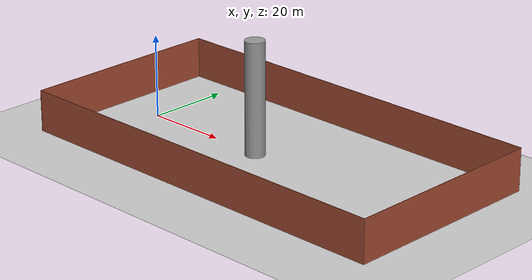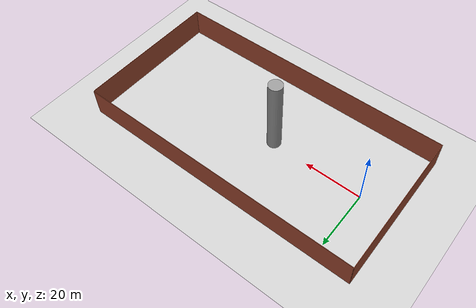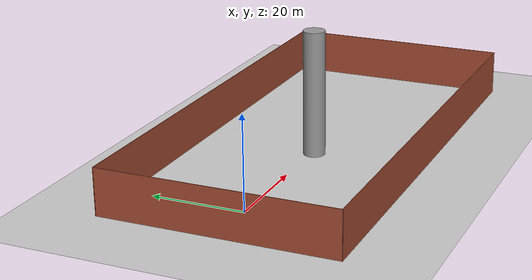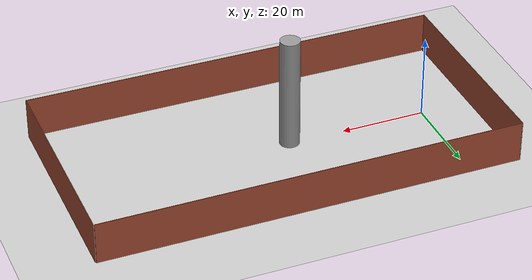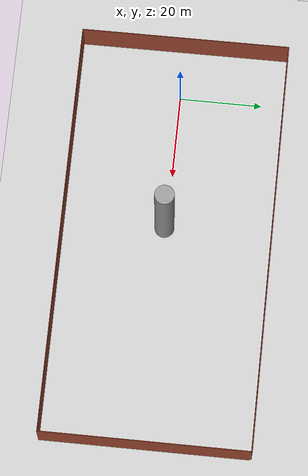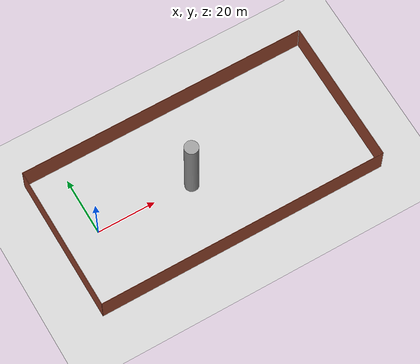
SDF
<sdf version="1.7">
 <world name="default">
  <light name="sun" type="directional">
   <pose>0 0 10 0 -0 0</pose>
   <diffuse>0.8 0.8 0.8 1</diffuse>
   <specular>0.2 0.2 0.2 1</specular>
   <attenuation>
    <range>1000</range>
    <constant>0.9</constant>
    <linear>0.01</linear>
    <quadratic>0.001</quadratic>
   </attenuation>
   <direction>-0.5 0.1 -0.9</direction>
   <spot><inner_angle>0</inner_angle><outer_angle>0</outer_angle><falloff>0</falloff></spot>
  </light>
  <model name="ground_plane">
   <static>1</static>
   <link name="link">
    <collision name="collision">
     <geometry><plane><normal>0 0 1</normal><size>100 100</size></plane></geometry>
     <surface>
      <contact><collide_bitmask>65535</collide_bitmask></contact>
      <friction><ode><mu>100</mu><mu2>50</mu2></ode></friction>
     </surface>
    </collision>
    <visual name="visual">
     <cast_shadows>0</cast_shadows>
     <geometry><plane><normal>0 0 1</normal><size>100 100</size></plane></geometry>
     <material>
      <script><uri>file://media/materials/scripts/gazebo.material</uri><name>Gazebo/Grey</name></script>
     </material>
    </visual>
   </link>
  </model>
  <gravity>0 0 -9.8</gravity>
  <magnetic_field>6e-06 2.3e-05 -4.2e-05</magnetic_field>
  <atmosphere type="adiabatic"/>
  <physics type="ode">
   <max_step_size>0.001</max_step_size>
   <real_time_factor>1</real_time_factor>
   <real_time_update_rate>1000</real_time_update_rate>
  </physics>
  <scene><ambient>0.4 0.4 0.4 1</ambient><background>0.7 0.7 0.7 1</background><shadows>1</shadows></scene>
  <spherical_coordinates>
   <surface_model>EARTH_WGS84</surface_model>
   <latitude_deg>0</latitude_deg>
   <longitude_deg>0</longitude_deg>
   <elevation>0</elevation>
   <heading_deg>0</heading_deg>
  </spherical_coordinates>
  <model name="ww">
   <pose>37.677 0.142355 0 0 -0 0</pose>
   <link name="Wall_10">
    <collision name="Wall_10_Collision">
     <geometry><box><size>50 0.15 10</size></box></geometry>
     <pose>0 0 5 0 -0 0</pose>
    </collision>
    <visual name="Wall_10_Visual">
     <pose>0 0 5 0 -0 0</pose>
     <geometry><box><size>50 0.15 10</size></box></geometry>
     <material>
      <script><uri>file://media/materials/scripts/gazebo.material</uri><name>Gazebo/Bricks</name></script>
      <ambient>1 1 1 1</ambient>
     </material>
     <meta><layer>0</layer></meta>
    </visual>
    <pose>50.033 -0.161355 0 0 -0 1.5708</pose>
   </link>
   <link name="Wall_12">
    <collision name="Wall_12_Collision">
     <geometry><box><size>100 0.15 10</size></box></geometry>
     <pose>0 0 5 0 -0 0</pose>
    </collision>
    <visual name="Wall_12_Visual">
     <pose>0 0 5 0 -0 0</pose>
     <geometry><box><size>100 0.15 10</size></box></geometry>
     <material>
      <script><uri>file://media/materials/scripts/gazebo.material</uri><name>Gazebo/Bricks</name></script>
      <ambient>1 1 1 1</ambient>
     </material>
     <meta><layer>0</layer></meta>
    </visual>
    <pose>-0.107647 25.0864 0 0 -0 0</pose>
   </link>
   <link name="Wall_4">
    <collision name="Wall_4_Collision">
     <geometry><box><size>50.3232 0.15 10</size></box></geometry>
     <pose>0 0 5 0 -0 0</pose>
    </collision>
    <visual name="Wall_4_Visual">
     <pose>0 0 5 0 -0 0</pose>
     <geometry><box><size>50.3232 0.15 10</size></box></geometry>
     <material>
      <script><uri>file://media/materials/scripts/gazebo.material</uri><name>Gazebo/Bricks</name></script>
      <ambient>1 1 1 1</ambient>
     </material>
     <meta><layer>0</layer></meta>
    </visual>
    <pose>-49.9248 0 0 0 -0 -1.5665</pose>
   </link>
   <link name="Wall_6">
    <collision name="Wall_6_Collision">
     <geometry><box><size>100 0.15 10</size></box></geometry>
     <pose>0 0 5 0 -0 0</pose>
    </collision>
    <visual name="Wall_6_Visual">
     <pose>0 0 5 0 -0 0</pose>
     <geometry><box><size>100 0.15 10</size></box></geometry>
     <material>
      <script><uri>file://media/materials/scripts/gazebo.material</uri><name>Gazebo/Bricks</name></script>
      <ambient>1 1 1 1</ambient>
     </material>
     <meta><layer>0</layer></meta>
    </visual>
    <pose>0.10796 -25.0864 0 0 -0 0</pose>
   </link>
   <static>1</static>
  </model>
  <model name="unit_cylinder">
   <pose>33.141 -0.572348 13.6607 1e-06 1e-06 0.160024</pose>
   <link name="link">
    <inertial>
     <mass>1</mass>
     <inertia><ixx>0.145833</ixx><ixy>0</ixy><ixz>0</ixz><iyy>0.145833</iyy><iyz>0</iyz><izz>0.125</izz></inertia>
    </inertial>
    <collision name="collision">
     <geometry><cylinder><radius>2.36081</radius><length>27.3214</length></cylinder></geometry>
    </collision>
    <visual name="visual">
     <geometry><cylinder><radius>2.36081</radius><length>27.3214</length></cylinder></geometry>
     <material>
      <script><name>Gazebo/Grey</name><uri>file://media/materials/scripts/gazebo.material</uri></script>
     </material>
    </visual>
   </link>
  </model>
 </world>
</sdf>
